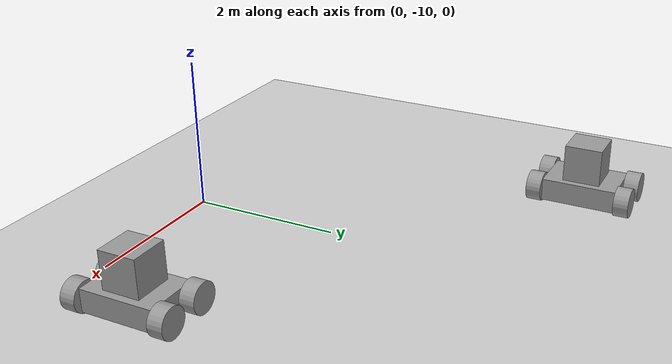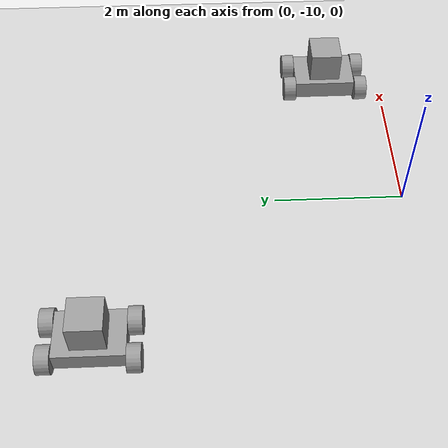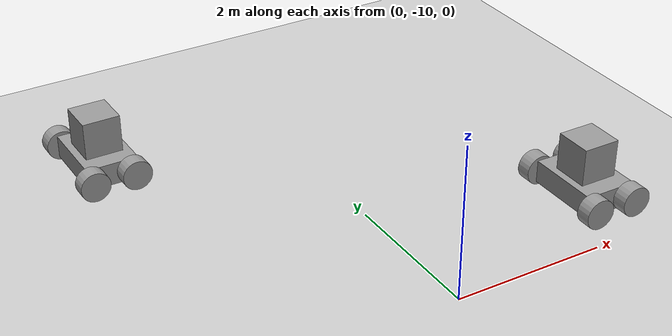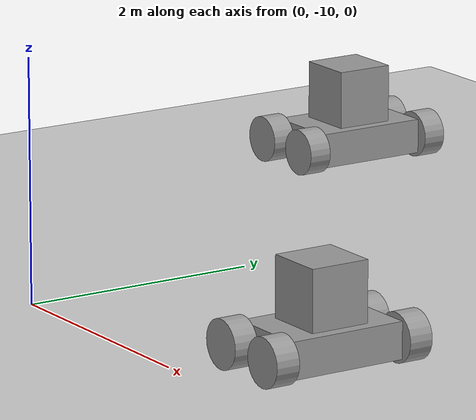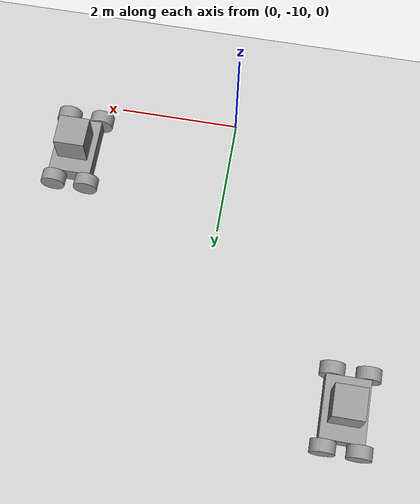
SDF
<sdf version="1.6">
 <world name="default">
  <model name="ground_plane">
   <static>1</static>
   <link name="link">
    <collision name="collision">
     <geometry><plane><normal>0 0 1</normal><size>100 100</size></plane></geometry>
     <surface>
      <contact><collide_bitmask>65535</collide_bitmask></contact>
      <friction><ode><mu>100</mu><mu2>50</mu2></ode></friction>
     </surface>
    </collision>
    <visual name="visual">
     <cast_shadows>0</cast_shadows>
     <geometry><plane><normal>0 0 1</normal><size>100 100</size></plane></geometry>
     <material>
      <script><uri>file://media/materials/scripts/gazebo.material</uri><name>Gazebo/Grey</name></script>
     </material>
    </visual>
   </link>
  </model>
  <model name="vroom">
   <link name="link_0">
    <inertial>
     <mass>1</mass>
     <inertia>
      <ixx>0.166667</ixx>
      <ixy>0</ixy>
      <ixz>0</ixz>
      <iyy>0.166667</iyy>
      <iyz>0</iyz>
      <izz>0.166667</izz>
     </inertia>
    </inertial>
    <pose>0.185083 -0.000105 -0.066667 0 -0 0</pose>
    <visual name="visual">
     <geometry><box><size>0.7 1 0.3</size></box></geometry>
     <material>
      <lighting>1</lighting>
      <script><uri>file://media/materials/scripts/gazebo.material</uri><name>Gazebo/Grey</name></script>
      <shader type="pixel"><normal_map>__default__</normal_map></shader>
      <ambient>0.3 0.3 0.3 1</ambient>
      <diffuse>0.7 0.7 0.7 1</diffuse>
      <specular>0.01 0.01 0.01 1</specular>
      <emissive>0 0 0 1</emissive>
     </material>
    </visual>
    <collision name="collision">
     <geometry><box><size>0.7 1 0.3</size></box></geometry>
     <surface>
      <friction>
       <ode><mu>1</mu><mu2>1</mu2><fdir1>0 0 0</fdir1><slip1>0</slip1><slip2>0</slip2></ode>
       <torsional>
        <coefficient>1</coefficient>
        <patch_radius>0</patch_radius>
        <surface_radius>0</surface_radius>
        <use_patch_radius>1</use_patch_radius>
        <ode><slip>0</slip></ode>
       </torsional>
      </friction>
      <bounce><restitution_coefficient>0</restitution_coefficient><threshold>1e+06</threshold></bounce>
      <contact>
       <collide_without_contact>0</collide_without_contact>
       <collide_without_contact_bitmask>1</collide_without_contact_bitmask>
       <collide_bitmask>1</collide_bitmask>
       <ode>
        <soft_cfm>0</soft_cfm>
        <soft_erp>0.2</soft_erp>
        <kp>1e+13</kp>
        <kd>1</kd>
        <max_vel>0.01</max_vel>
        <min_depth>0</min_depth>
       </ode>
       <bullet>
        <split_impulse>1</split_impulse>
        <split_impulse_penetration_threshold>-0.01</split_impulse_penetration_threshold>
        <soft_cfm>0</soft_cfm>
        <soft_erp>0.2</soft_erp>
        <kp>1e+13</kp>
        <kd>1</kd>
       </bullet>
      </contact>
     </surface>
    </collision>
   </link>
   <link name="link_1">
    <inertial>
     <mass>1</mass>
     <inertia><ixx>0.145833</ixx><ixy>0</ixy><ixz>0</ixz><iyy>0.145833</iyy><iyz>0</iyz><izz>0.125</izz></inertia>
    </inertial>
    <pose>0.444635 0.599914 -0.066667 0 -0 0</pose>
    <visual name="visual">
     <pose>0 0 0 1.5707 -0 0</pose>
     <geometry><cylinder><radius>0.2</radius><length>0.2</length></cylinder></geometry>
     <material>
      <lighting>1</lighting>
      <script><uri>file://media/materials/scripts/gazebo.material</uri><name>Gazebo/Grey</name></script>
      <shader type="pixel"><normal_map>__default__</normal_map></shader>
      <ambient>0.3 0.3 0.3 1</ambient>
      <diffuse>0.7 0.7 0.7 1</diffuse>
      <specular>0.01 0.01 0.01 1</specular>
      <emissive>0 0 0 1</emissive>
     </material>
    </visual>
    <collision name="collision">
     <pose>0 0 0 1.5707 -0 0</pose>
     <geometry><cylinder><radius>0.2</radius><length>0.2</length></cylinder></geometry>
     <surface>
      <friction>
       <ode><mu>1</mu><mu2>1</mu2><fdir1>0 0 0</fdir1><slip1>0</slip1><slip2>0</slip2></ode>
       <torsional>
        <coefficient>1</coefficient>
        <patch_radius>0</patch_radius>
        <surface_radius>0</surface_radius>
        <use_patch_radius>1</use_patch_radius>
        <ode><slip>0</slip></ode>
       </torsional>
      </friction>
      <bounce><restitution_coefficient>0</restitution_coefficient><threshold>1e+06</threshold></bounce>
      <contact>
       <collide_without_contact>0</collide_without_contact>
       <collide_without_contact_bitmask>1</collide_without_contact_bitmask>
       <collide_bitmask>1</collide_bitmask>
       <ode>
        <soft_cfm>0</soft_cfm>
        <soft_erp>0.2</soft_erp>
        <kp>1e+13</kp>
        <kd>1</kd>
        <max_vel>0.01</max_vel>
        <min_depth>0</min_depth>
       </ode>
       <bullet>
        <split_impulse>1</split_impulse>
        <split_impulse_penetration_threshold>-0.01</split_impulse_penetration_threshold>
        <soft_cfm>0</soft_cfm>
        <soft_erp>0.2</soft_erp>
        <kp>1e+13</kp>
        <kd>1</kd>
       </bullet>
      </contact>
     </surface>
    </collision>
   </link>
   <link name="link_1_clone">
    <inertial>
     <mass>1</mass>
     <inertia><ixx>0.145833</ixx><ixy>0</ixy><ixz>0</ixz><iyy>0.145833</iyy><iyz>0</iyz><izz>0.125</izz></inertia>
    </inertial>
    <pose>-0.108437 0.600545 -0.066667 0 -0 0</pose>
    <visual name="visual">
     <pose>0 0 0 1.5707 -0 0</pose>
     <geometry><cylinder><radius>0.2</radius><length>0.2</length></cylinder></geometry>
     <material>
      <lighting>1</lighting>
      <script><uri>file://media/materials/scripts/gazebo.material</uri><name>Gazebo/Grey</name></script>
      <shader type="pixel"><normal_map>__default__</normal_map></shader>
      <ambient>0.3 0.3 0.3 1</ambient>
      <diffuse>0.7 0.7 0.7 1</diffuse>
      <specular>0.01 0.01 0.01 1</specular>
      <emissive>0 0 0 1</emissive>
     </material>
    </visual>
    <collision name="collision">
     <pose>0 0 0 1.5707 -0 0</pose>
     <geometry><cylinder><radius>0.2</radius><length>0.2</length></cylinder></geometry>
     <surface>
      <friction>
       <ode><mu>1</mu><mu2>1</mu2><fdir1>0 0 0</fdir1><slip1>0</slip1><slip2>0</slip2></ode>
       <torsional>
        <coefficient>1</coefficient>
        <patch_radius>0</patch_radius>
        <surface_radius>0</surface_radius>
        <use_patch_radius>1</use_patch_radius>
        <ode><slip>0</slip></ode>
       </torsional>
      </friction>
      <bounce><restitution_coefficient>0</restitution_coefficient><threshold>1e+06</threshold></bounce>
      <contact>
       <collide_without_contact>0</collide_without_contact>
       <collide_without_contact_bitmask>1</collide_without_contact_bitmask>
       <collide_bitmask>1</collide_bitmask>
       <ode>
        <soft_cfm>0</soft_cfm>
        <soft_erp>0.2</soft_erp>
        <kp>1e+13</kp>
        <kd>1</kd>
        <max_vel>0.01</max_vel>
        <min_depth>0</min_depth>
       </ode>
       <bullet>
        <split_impulse>1</split_impulse>
        <split_impulse_penetration_threshold>-0.01</split_impulse_penetration_threshold>
        <soft_cfm>0</soft_cfm>
        <soft_erp>0.2</soft_erp>
        <kp>1e+13</kp>
        <kd>1</kd>
       </bullet>
      </contact>
     </surface>
    </collision>
   </link>
   <link name="link_1_clone_0">
    <inertial>
     <mass>1</mass>
     <inertia><ixx>0.145833</ixx><ixy>0</ixy><ixz>0</ixz><iyy>0.145833</iyy><iyz>0</iyz><izz>0.125</izz></inertia>
    </inertial>
    <pose>-0.127434 -0.600124 -0.066667 0 -0 0</pose>
    <visual name="visual">
     <pose>0 0 0 1.5707 -0 0</pose>
     <geometry><cylinder><radius>0.2</radius><length>0.2</length></cylinder></geometry>
     <material>
      <lighting>1</lighting>
      <script><uri>file://media/materials/scripts/gazebo.material</uri><name>Gazebo/Grey</name></script>
      <shader type="pixel"><normal_map>__default__</normal_map></shader>
      <ambient>0.3 0.3 0.3 1</ambient>
      <diffuse>0.7 0.7 0.7 1</diffuse>
      <specular>0.01 0.01 0.01 1</specular>
      <emissive>0 0 0 1</emissive>
     </material>
    </visual>
    <collision name="collision">
     <pose>0 0 0 1.5707 -0 0</pose>
     <geometry><cylinder><radius>0.2</radius><length>0.2</length></cylinder></geometry>
     <surface>
      <friction>
       <ode><mu>1</mu><mu2>1</mu2><fdir1>0 0 0</fdir1><slip1>0</slip1><slip2>0</slip2></ode>
       <torsional>
        <coefficient>1</coefficient>
        <patch_radius>0</patch_radius>
        <surface_radius>0</surface_radius>
        <use_patch_radius>1</use_patch_radius>
        <ode><slip>0</slip></ode>
       </torsional>
      </friction>
      <bounce><restitution_coefficient>0</restitution_coefficient><threshold>1e+06</threshold></bounce>
      <contact>
       <collide_without_contact>0</collide_without_contact>
       <collide_without_contact_bitmask>1</collide_without_contact_bitmask>
       <collide_bitmask>1</collide_bitmask>
       <ode>
        <soft_cfm>0</soft_cfm>
        <soft_erp>0.2</soft_erp>
        <kp>1e+13</kp>
        <kd>1</kd>
        <max_vel>0.01</max_vel>
        <min_depth>0</min_depth>
       </ode>
       <bullet>
        <split_impulse>1</split_impulse>
        <split_impulse_penetration_threshold>-0.01</split_impulse_penetration_threshold>
        <soft_cfm>0</soft_cfm>
        <soft_erp>0.2</soft_erp>
        <kp>1e+13</kp>
        <kd>1</kd>
       </bullet>
      </contact>
     </surface>
    </collision>
   </link>
   <link name="link_1_clone_1">
    <inertial>
     <mass>1</mass>
     <inertia><ixx>0.145833</ixx><ixy>0</ixy><ixz>0</ixz><iyy>0.145833</iyy><iyz>0</iyz><izz>0.125</izz></inertia>
    </inertial>
    <pose>0.436609 -0.600124 -0.066667 0 -0 0</pose>
    <visual name="visual">
     <pose>0 0 0 1.5707 -0 0</pose>
     <geometry><cylinder><radius>0.2</radius><length>0.2</length></cylinder></geometry>
     <material>
      <lighting>1</lighting>
      <script><uri>file://media/materials/scripts/gazebo.material</uri><name>Gazebo/Grey</name></script>
      <shader type="pixel"><normal_map>__default__</normal_map></shader>
      <ambient>0.3 0.3 0.3 1</ambient>
      <diffuse>0.7 0.7 0.7 1</diffuse>
      <specular>0.01 0.01 0.01 1</specular>
      <emissive>0 0 0 1</emissive>
     </material>
    </visual>
    <collision name="collision">
     <pose>0 0 0 1.5707 -0 0</pose>
     <geometry><cylinder><radius>0.2</radius><length>0.2</length></cylinder></geometry>
     <surface>
      <friction>
       <ode><mu>1</mu><mu2>1</mu2><fdir1>0 0 0</fdir1><slip1>0</slip1><slip2>0</slip2></ode>
       <torsional>
        <coefficient>1</coefficient>
        <patch_radius>0</patch_radius>
        <surface_radius>0</surface_radius>
        <use_patch_radius>1</use_patch_radius>
        <ode><slip>0</slip></ode>
       </torsional>
      </friction>
      <bounce><restitution_coefficient>0</restitution_coefficient><threshold>1e+06</threshold></bounce>
      <contact>
       <collide_without_contact>0</collide_without_contact>
       <collide_without_contact_bitmask>1</collide_without_contact_bitmask>
       <collide_bitmask>1</collide_bitmask>
       <ode>
        <soft_cfm>0</soft_cfm>
        <soft_erp>0.2</soft_erp>
        <kp>1e+13</kp>
        <kd>1</kd>
        <max_vel>0.01</max_vel>
        <min_depth>0</min_depth>
       </ode>
       <bullet>
        <split_impulse>1</split_impulse>
        <split_impulse_penetration_threshold>-0.01</split_impulse_penetration_threshold>
        <soft_cfm>0</soft_cfm>
        <soft_erp>0.2</soft_erp>
        <kp>1e+13</kp>
        <kd>1</kd>
       </bullet>
      </contact>
     </surface>
    </collision>
   </link>
   <link name="link_2">
    <inertial>
     <mass>1</mass>
     <inertia>
      <ixx>0.166667</ixx>
      <ixy>0</ixy>
      <ixz>0</ixz>
      <iyy>0.166667</iyy>
      <iyz>0</iyz>
      <izz>0.166667</izz>
     </inertia>
    </inertial>
    <pose>0.185083 -0.000105 0.333333 0 -0 0</pose>
    <visual name="visual">
     <geometry><box><size>0.5 0.5 0.5</size></box></geometry>
     <material>
      <lighting>1</lighting>
      <script><uri>file://media/materials/scripts/gazebo.material</uri><name>Gazebo/Grey</name></script>
      <shader type="pixel"><normal_map>__default__</normal_map></shader>
      <ambient>0.3 0.3 0.3 1</ambient>
      <diffuse>0.7 0.7 0.7 1</diffuse>
      <specular>0.01 0.01 0.01 1</specular>
      <emissive>0 0 0 1</emissive>
     </material>
    </visual>
    <collision name="collision">
     <geometry><box><size>0.5 0.5 0.5</size></box></geometry>
     <surface>
      <friction>
       <ode><mu>1</mu><mu2>1</mu2><fdir1>0 0 0</fdir1><slip1>0</slip1><slip2>0</slip2></ode>
       <torsional>
        <coefficient>1</coefficient>
        <patch_radius>0</patch_radius>
        <surface_radius>0</surface_radius>
        <use_patch_radius>1</use_patch_radius>
        <ode><slip>0</slip></ode>
       </torsional>
      </friction>
      <bounce><restitution_coefficient>0</restitution_coefficient><threshold>1e+06</threshold></bounce>
      <contact>
       <collide_without_contact>0</collide_without_contact>
       <collide_without_contact_bitmask>1</collide_without_contact_bitmask>
       <collide_bitmask>1</collide_bitmask>
       <ode>
        <soft_cfm>0</soft_cfm>
        <soft_erp>0.2</soft_erp>
        <kp>1e+13</kp>
        <kd>1</kd>
        <max_vel>0.01</max_vel>
        <min_depth>0</min_depth>
       </ode>
       <bullet>
        <split_impulse>1</split_impulse>
        <split_impulse_penetration_threshold>-0.01</split_impulse_penetration_threshold>
        <soft_cfm>0</soft_cfm>
        <soft_erp>0.2</soft_erp>
        <kp>1e+13</kp>
        <kd>1</kd>
       </bullet>
      </contact>
     </surface>
    </collision>
   </link>
   <joint name="link_0_JOINT_0" type="revolute">
    <parent>link_0</parent>
    <child>link_1</child>
    <axis>
     <xyz>0 0 1</xyz>
     <use_parent_model_frame>0</use_parent_model_frame>
     <limit>
      <lower>-1.79769e+308</lower>
      <upper>1.79769e+308</upper>
      <effort>-1</effort>
      <velocity>-1</velocity>
     </limit>
     <dynamics>
      <spring_reference>0</spring_reference>
      <spring_stiffness>0</spring_stiffness>
      <damping>0</damping>
     </dynamics>
    </axis>
    <physics>
     <ode><limit><cfm>0</cfm><erp>0.2</erp></limit><suspension><cfm>0</cfm><erp>0.2</erp></suspension></ode>
    </physics>
   </joint>
   <joint name="link_0_JOINT_1" type="revolute">
    <parent>link_0</parent>
    <child>link_1_clone</child>
    <axis>
     <xyz>0 0 1</xyz>
     <use_parent_model_frame>0</use_parent_model_frame>
     <limit>
      <lower>-1.79769e+308</lower>
      <upper>1.79769e+308</upper>
      <effort>-1</effort>
      <velocity>-1</velocity>
     </limit>
     <dynamics>
      <spring_reference>0</spring_reference>
      <spring_stiffness>0</spring_stiffness>
      <damping>0</damping>
     </dynamics>
    </axis>
    <physics>
     <ode><limit><cfm>0</cfm><erp>0.2</erp></limit><suspension><cfm>0</cfm><erp>0.2</erp></suspension></ode>
    </physics>
   </joint>
   <joint name="link_0_JOINT_2" type="revolute">
    <parent>link_0</parent>
    <child>link_1_clone_0</child>
    <axis>
     <xyz>1 0 0</xyz>
     <use_parent_model_frame>0</use_parent_model_frame>
     <limit>
      <lower>-1.79769e+308</lower>
      <upper>1.79769e+308</upper>
      <effort>-1</effort>
      <velocity>-1</velocity>
     </limit>
     <dynamics>
      <spring_reference>0</spring_reference>
      <spring_stiffness>0</spring_stiffness>
      <damping>0</damping>
     </dynamics>
    </axis>
    <physics>
     <ode><limit><cfm>0</cfm><erp>0.2</erp></limit><suspension><cfm>0</cfm><erp>0.2</erp></suspension></ode>
    </physics>
   </joint>
   <joint name="link_0_JOINT_4" type="revolute">
    <parent>link_0</parent>
    <child>link_1_clone_1</child>
    <axis>
     <xyz>1 0 0</xyz>
     <use_parent_model_frame>0</use_parent_model_frame>
     <limit>
      <lower>-1.79769e+308</lower>
      <upper>1.79769e+308</upper>
      <effort>-1</effort>
      <velocity>-1</velocity>
     </limit>
     <dynamics>
      <spring_reference>0</spring_reference>
      <spring_stiffness>0</spring_stiffness>
      <damping>0</damping>
     </dynamics>
    </axis>
    <physics>
     <ode><limit><cfm>0</cfm><erp>0.2</erp></limit><suspension><cfm>0</cfm><erp>0.2</erp></suspension></ode>
    </physics>
   </joint>
   <joint name="link_0_JOINT_5" type="revolute">
    <parent>link_0</parent>
    <child>link_2</child>
    <axis>
     <xyz>1 0 0</xyz>
     <use_parent_model_frame>0</use_parent_model_frame>
     <limit>
      <lower>-1.79769e+308</lower>
      <upper>1.79769e+308</upper>
      <effort>-1</effort>
      <velocity>-1</velocity>
     </limit>
     <dynamics>
      <spring_reference>0</spring_reference>
      <spring_stiffness>0</spring_stiffness>
      <damping>0</damping>
     </dynamics>
    </axis>
    <physics>
     <ode><limit><cfm>0</cfm><erp>0.2</erp></limit><suspension><cfm>0</cfm><erp>0.2</erp></suspension></ode>
    </physics>
   </joint>
   <static>0</static>
   <pose>-2.58792 -5.33425 0.266671 7e-06 0 0.001865</pose>
  </model>
  <model name="vroom_0">
   <link name="link_0">
    <inertial>
     <mass>1</mass>
     <inertia>
      <ixx>0.166667</ixx>
      <ixy>0</ixy>
      <ixz>0</ixz>
      <iyy>0.166667</iyy>
      <iyz>0</iyz>
      <izz>0.166667</izz>
     </inertia>
    </inertial>
    <pose>0.185083 -0.000105 -0.066667 0 -0 0</pose>
    <visual name="visual">
     <geometry><box><size>0.7 1 0.3</size></box></geometry>
     <material>
      <lighting>1</lighting>
      <script><uri>file://media/materials/scripts/gazebo.material</uri><name>Gazebo/Grey</name></script>
      <shader type="pixel"><normal_map>__default__</normal_map></shader>
      <ambient>0.3 0.3 0.3 1</ambient>
      <diffuse>0.7 0.7 0.7 1</diffuse>
      <specular>0.01 0.01 0.01 1</specular>
      <emissive>0 0 0 1</emissive>
     </material>
    </visual>
    <collision name="collision">
     <geometry><box><size>0.7 1 0.3</size></box></geometry>
     <surface>
      <friction>
       <ode><mu>1</mu><mu2>1</mu2><fdir1>0 0 0</fdir1><slip1>0</slip1><slip2>0</slip2></ode>
       <torsional>
        <coefficient>1</coefficient>
        <patch_radius>0</patch_radius>
        <surface_radius>0</surface_radius>
        <use_patch_radius>1</use_patch_radius>
        <ode><slip>0</slip></ode>
       </torsional>
      </friction>
      <bounce><restitution_coefficient>0</restitution_coefficient><threshold>1e+06</threshold></bounce>
      <contact>
       <collide_without_contact>0</collide_without_contact>
       <collide_without_contact_bitmask>1</collide_without_contact_bitmask>
       <collide_bitmask>1</collide_bitmask>
       <ode>
        <soft_cfm>0</soft_cfm>
        <soft_erp>0.2</soft_erp>
        <kp>1e+13</kp>
        <kd>1</kd>
        <max_vel>0.01</max_vel>
        <min_depth>0</min_depth>
       </ode>
       <bullet>
        <split_impulse>1</split_impulse>
        <split_impulse_penetration_threshold>-0.01</split_impulse_penetration_threshold>
        <soft_cfm>0</soft_cfm>
        <soft_erp>0.2</soft_erp>
        <kp>1e+13</kp>
        <kd>1</kd>
       </bullet>
      </contact>
     </surface>
    </collision>
   </link>
   <link name="link_1">
    <inertial>
     <mass>1</mass>
     <inertia><ixx>0.145833</ixx><ixy>0</ixy><ixz>0</ixz><iyy>0.145833</iyy><iyz>0</iyz><izz>0.125</izz></inertia>
    </inertial>
    <pose>0.444635 0.599914 -0.066667 0 -0 0</pose>
    <visual name="visual">
     <pose>0 0 0 1.5707 -0 0</pose>
     <geometry><cylinder><radius>0.2</radius><length>0.2</length></cylinder></geometry>
     <material>
      <lighting>1</lighting>
      <script><uri>file://media/materials/scripts/gazebo.material</uri><name>Gazebo/Grey</name></script>
      <shader type="pixel"><normal_map>__default__</normal_map></shader>
      <ambient>0.3 0.3 0.3 1</ambient>
      <diffuse>0.7 0.7 0.7 1</diffuse>
      <specular>0.01 0.01 0.01 1</specular>
      <emissive>0 0 0 1</emissive>
     </material>
    </visual>
    <collision name="collision">
     <pose>0 0 0 1.5707 -0 0</pose>
     <geometry><cylinder><radius>0.2</radius><length>0.2</length></cylinder></geometry>
     <surface>
      <friction>
       <ode><mu>1</mu><mu2>1</mu2><fdir1>0 0 0</fdir1><slip1>0</slip1><slip2>0</slip2></ode>
       <torsional>
        <coefficient>1</coefficient>
        <patch_radius>0</patch_radius>
        <surface_radius>0</surface_radius>
        <use_patch_radius>1</use_patch_radius>
        <ode><slip>0</slip></ode>
       </torsional>
      </friction>
      <bounce><restitution_coefficient>0</restitution_coefficient><threshold>1e+06</threshold></bounce>
      <contact>
       <collide_without_contact>0</collide_without_contact>
       <collide_without_contact_bitmask>1</collide_without_contact_bitmask>
       <collide_bitmask>1</collide_bitmask>
       <ode>
        <soft_cfm>0</soft_cfm>
        <soft_erp>0.2</soft_erp>
        <kp>1e+13</kp>
        <kd>1</kd>
        <max_vel>0.01</max_vel>
        <min_depth>0</min_depth>
       </ode>
       <bullet>
        <split_impulse>1</split_impulse>
        <split_impulse_penetration_threshold>-0.01</split_impulse_penetration_threshold>
        <soft_cfm>0</soft_cfm>
        <soft_erp>0.2</soft_erp>
        <kp>1e+13</kp>
        <kd>1</kd>
       </bullet>
      </contact>
     </surface>
    </collision>
   </link>
   <link name="link_1_clone">
    <inertial>
     <mass>1</mass>
     <inertia><ixx>0.145833</ixx><ixy>0</ixy><ixz>0</ixz><iyy>0.145833</iyy><iyz>0</iyz><izz>0.125</izz></inertia>
    </inertial>
    <pose>-0.108437 0.600545 -0.066667 0 -0 0</pose>
    <visual name="visual">
     <pose>0 0 0 1.5707 -0 0</pose>
     <geometry><cylinder><radius>0.2</radius><length>0.2</length></cylinder></geometry>
     <material>
      <lighting>1</lighting>
      <script><uri>file://media/materials/scripts/gazebo.material</uri><name>Gazebo/Grey</name></script>
      <shader type="pixel"><normal_map>__default__</normal_map></shader>
      <ambient>0.3 0.3 0.3 1</ambient>
      <diffuse>0.7 0.7 0.7 1</diffuse>
      <specular>0.01 0.01 0.01 1</specular>
      <emissive>0 0 0 1</emissive>
     </material>
    </visual>
    <collision name="collision">
     <pose>0 0 0 1.5707 -0 0</pose>
     <geometry><cylinder><radius>0.2</radius><length>0.2</length></cylinder></geometry>
     <surface>
      <friction>
       <ode><mu>1</mu><mu2>1</mu2><fdir1>0 0 0</fdir1><slip1>0</slip1><slip2>0</slip2></ode>
       <torsional>
        <coefficient>1</coefficient>
        <patch_radius>0</patch_radius>
        <surface_radius>0</surface_radius>
        <use_patch_radius>1</use_patch_radius>
        <ode><slip>0</slip></ode>
       </torsional>
      </friction>
      <bounce><restitution_coefficient>0</restitution_coefficient><threshold>1e+06</threshold></bounce>
      <contact>
       <collide_without_contact>0</collide_without_contact>
       <collide_without_contact_bitmask>1</collide_without_contact_bitmask>
       <collide_bitmask>1</collide_bitmask>
       <ode>
        <soft_cfm>0</soft_cfm>
        <soft_erp>0.2</soft_erp>
        <kp>1e+13</kp>
        <kd>1</kd>
        <max_vel>0.01</max_vel>
        <min_depth>0</min_depth>
       </ode>
       <bullet>
        <split_impulse>1</split_impulse>
        <split_impulse_penetration_threshold>-0.01</split_impulse_penetration_threshold>
        <soft_cfm>0</soft_cfm>
        <soft_erp>0.2</soft_erp>
        <kp>1e+13</kp>
        <kd>1</kd>
       </bullet>
      </contact>
     </surface>
    </collision>
   </link>
   <link name="link_1_clone_0">
    <inertial>
     <mass>1</mass>
     <inertia><ixx>0.145833</ixx><ixy>0</ixy><ixz>0</ixz><iyy>0.145833</iyy><iyz>0</iyz><izz>0.125</izz></inertia>
    </inertial>
    <pose>-0.127434 -0.600124 -0.066667 0 -0 0</pose>
    <visual name="visual">
     <pose>0 0 0 1.5707 -0 0</pose>
     <geometry><cylinder><radius>0.2</radius><length>0.2</length></cylinder></geometry>
     <material>
      <lighting>1</lighting>
      <script><uri>file://media/materials/scripts/gazebo.material</uri><name>Gazebo/Grey</name></script>
      <shader type="pixel"><normal_map>__default__</normal_map></shader>
      <ambient>0.3 0.3 0.3 1</ambient>
      <diffuse>0.7 0.7 0.7 1</diffuse>
      <specular>0.01 0.01 0.01 1</specular>
      <emissive>0 0 0 1</emissive>
     </material>
    </visual>
    <collision name="collision">
     <pose>0 0 0 1.5707 -0 0</pose>
     <geometry><cylinder><radius>0.2</radius><length>0.2</length></cylinder></geometry>
     <surface>
      <friction>
       <ode><mu>1</mu><mu2>1</mu2><fdir1>0 0 0</fdir1><slip1>0</slip1><slip2>0</slip2></ode>
       <torsional>
        <coefficient>1</coefficient>
        <patch_radius>0</patch_radius>
        <surface_radius>0</surface_radius>
        <use_patch_radius>1</use_patch_radius>
        <ode><slip>0</slip></ode>
       </torsional>
      </friction>
      <bounce><restitution_coefficient>0</restitution_coefficient><threshold>1e+06</threshold></bounce>
      <contact>
       <collide_without_contact>0</collide_without_contact>
       <collide_without_contact_bitmask>1</collide_without_contact_bitmask>
       <collide_bitmask>1</collide_bitmask>
       <ode>
        <soft_cfm>0</soft_cfm>
        <soft_erp>0.2</soft_erp>
        <kp>1e+13</kp>
        <kd>1</kd>
        <max_vel>0.01</max_vel>
        <min_depth>0</min_depth>
       </ode>
       <bullet>
        <split_impulse>1</split_impulse>
        <split_impulse_penetration_threshold>-0.01</split_impulse_penetration_threshold>
        <soft_cfm>0</soft_cfm>
        <soft_erp>0.2</soft_erp>
        <kp>1e+13</kp>
        <kd>1</kd>
       </bullet>
      </contact>
     </surface>
    </collision>
   </link>
   <link name="link_1_clone_1">
    <inertial>
     <mass>1</mass>
     <inertia><ixx>0.145833</ixx><ixy>0</ixy><ixz>0</ixz><iyy>0.145833</iyy><iyz>0</iyz><izz>0.125</izz></inertia>
    </inertial>
    <pose>0.436609 -0.600124 -0.066667 0 -0 0</pose>
    <visual name="visual">
     <pose>0 0 0 1.5707 -0 0</pose>
     <geometry><cylinder><radius>0.2</radius><length>0.2</length></cylinder></geometry>
     <material>
      <lighting>1</lighting>
      <script><uri>file://media/materials/scripts/gazebo.material</uri><name>Gazebo/Grey</name></script>
      <shader type="pixel"><normal_map>__default__</normal_map></shader>
      <ambient>0.3 0.3 0.3 1</ambient>
      <diffuse>0.7 0.7 0.7 1</diffuse>
      <specular>0.01 0.01 0.01 1</specular>
      <emissive>0 0 0 1</emissive>
     </material>
    </visual>
    <collision name="collision">
     <pose>0 0 0 1.5707 -0 0</pose>
     <geometry><cylinder><radius>0.2</radius><length>0.2</length></cylinder></geometry>
     <surface>
      <friction>
       <ode><mu>1</mu><mu2>1</mu2><fdir1>0 0 0</fdir1><slip1>0</slip1><slip2>0</slip2></ode>
       <torsional>
        <coefficient>1</coefficient>
        <patch_radius>0</patch_radius>
        <surface_radius>0</surface_radius>
        <use_patch_radius>1</use_patch_radius>
        <ode><slip>0</slip></ode>
       </torsional>
      </friction>
      <bounce><restitution_coefficient>0</restitution_coefficient><threshold>1e+06</threshold></bounce>
      <contact>
       <collide_without_contact>0</collide_without_contact>
       <collide_without_contact_bitmask>1</collide_without_contact_bitmask>
       <collide_bitmask>1</collide_bitmask>
       <ode>
        <soft_cfm>0</soft_cfm>
        <soft_erp>0.2</soft_erp>
        <kp>1e+13</kp>
        <kd>1</kd>
        <max_vel>0.01</max_vel>
        <min_depth>0</min_depth>
       </ode>
       <bullet>
        <split_impulse>1</split_impulse>
        <split_impulse_penetration_threshold>-0.01</split_impulse_penetration_threshold>
        <soft_cfm>0</soft_cfm>
        <soft_erp>0.2</soft_erp>
        <kp>1e+13</kp>
        <kd>1</kd>
       </bullet>
      </contact>
     </surface>
    </collision>
   </link>
   <link name="link_2">
    <inertial>
     <mass>1</mass>
     <inertia>
      <ixx>0.166667</ixx>
      <ixy>0</ixy>
      <ixz>0</ixz>
      <iyy>0.166667</iyy>
      <iyz>0</iyz>
      <izz>0.166667</izz>
     </inertia>
    </inertial>
    <pose>0.185083 -0.000105 0.333333 0 -0 0</pose>
    <visual name="visual">
     <geometry><box><size>0.5 0.5 0.5</size></box></geometry>
     <material>
      <lighting>1</lighting>
      <script><uri>file://media/materials/scripts/gazebo.material</uri><name>Gazebo/Grey</name></script>
      <shader type="pixel"><normal_map>__default__</normal_map></shader>
      <ambient>0.3 0.3 0.3 1</ambient>
      <diffuse>0.7 0.7 0.7 1</diffuse>
      <specular>0.01 0.01 0.01 1</specular>
      <emissive>0 0 0 1</emissive>
     </material>
    </visual>
    <collision name="collision">
     <geometry><box><size>0.5 0.5 0.5</size></box></geometry>
     <surface>
      <friction>
       <ode><mu>1</mu><mu2>1</mu2><fdir1>0 0 0</fdir1><slip1>0</slip1><slip2>0</slip2></ode>
       <torsional>
        <coefficient>1</coefficient>
        <patch_radius>0</patch_radius>
        <surface_radius>0</surface_radius>
        <use_patch_radius>1</use_patch_radius>
        <ode><slip>0</slip></ode>
       </torsional>
      </friction>
      <bounce><restitution_coefficient>0</restitution_coefficient><threshold>1e+06</threshold></bounce>
      <contact>
       <collide_without_contact>0</collide_without_contact>
       <collide_without_contact_bitmask>1</collide_without_contact_bitmask>
       <collide_bitmask>1</collide_bitmask>
       <ode>
        <soft_cfm>0</soft_cfm>
        <soft_erp>0.2</soft_erp>
        <kp>1e+13</kp>
        <kd>1</kd>
        <max_vel>0.01</max_vel>
        <min_depth>0</min_depth>
       </ode>
       <bullet>
        <split_impulse>1</split_impulse>
        <split_impulse_penetration_threshold>-0.01</split_impulse_penetration_threshold>
        <soft_cfm>0</soft_cfm>
        <soft_erp>0.2</soft_erp>
        <kp>1e+13</kp>
        <kd>1</kd>
       </bullet>
      </contact>
     </surface>
    </collision>
   </link>
   <joint name="link_0_JOINT_0" type="revolute">
    <parent>link_0</parent>
    <child>link_1</child>
    <axis>
     <xyz>0 0 1</xyz>
     <use_parent_model_frame>0</use_parent_model_frame>
     <limit>
      <lower>-1.79769e+308</lower>
      <upper>1.79769e+308</upper>
      <effort>-1</effort>
      <velocity>-1</velocity>
     </limit>
     <dynamics>
      <spring_reference>0</spring_reference>
      <spring_stiffness>0</spring_stiffness>
      <damping>0</damping>
     </dynamics>
    </axis>
    <physics>
     <ode><limit><cfm>0</cfm><erp>0.2</erp></limit><suspension><cfm>0</cfm><erp>0.2</erp></suspension></ode>
    </physics>
   </joint>
   <joint name="link_0_JOINT_1" type="revolute">
    <parent>link_0</parent>
    <child>link_1_clone</child>
    <axis>
     <xyz>0 0 1</xyz>
     <use_parent_model_frame>0</use_parent_model_frame>
     <limit>
      <lower>-1.79769e+308</lower>
      <upper>1.79769e+308</upper>
      <effort>-1</effort>
      <velocity>-1</velocity>
     </limit>
     <dynamics>
      <spring_reference>0</spring_reference>
      <spring_stiffness>0</spring_stiffness>
      <damping>0</damping>
     </dynamics>
    </axis>
    <physics>
     <ode><limit><cfm>0</cfm><erp>0.2</erp></limit><suspension><cfm>0</cfm><erp>0.2</erp></suspension></ode>
    </physics>
   </joint>
   <joint name="link_0_JOINT_2" type="revolute">
    <parent>link_0</parent>
    <child>link_1_clone_0</child>
    <axis>
     <xyz>1 0 0</xyz>
     <use_parent_model_frame>0</use_parent_model_frame>
     <limit>
      <lower>-1.79769e+308</lower>
      <upper>1.79769e+308</upper>
      <effort>-1</effort>
      <velocity>-1</velocity>
     </limit>
     <dynamics>
      <spring_reference>0</spring_reference>
      <spring_stiffness>0</spring_stiffness>
      <damping>0</damping>
     </dynamics>
    </axis>
    <physics>
     <ode><limit><cfm>0</cfm><erp>0.2</erp></limit><suspension><cfm>0</cfm><erp>0.2</erp></suspension></ode>
    </physics>
   </joint>
   <joint name="link_0_JOINT_4" type="revolute">
    <parent>link_0</parent>
    <child>link_1_clone_1</child>
    <axis>
     <xyz>1 0 0</xyz>
     <use_parent_model_frame>0</use_parent_model_frame>
     <limit>
      <lower>-1.79769e+308</lower>
      <upper>1.79769e+308</upper>
      <effort>-1</effort>
      <velocity>-1</velocity>
     </limit>
     <dynamics>
      <spring_reference>0</spring_reference>
      <spring_stiffness>0</spring_stiffness>
      <damping>0</damping>
     </dynamics>
    </axis>
    <physics>
     <ode><limit><cfm>0</cfm><erp>0.2</erp></limit><suspension><cfm>0</cfm><erp>0.2</erp></suspension></ode>
    </physics>
   </joint>
   <joint name="link_0_JOINT_5" type="revolute">
    <parent>link_0</parent>
    <child>link_2</child>
    <axis>
     <xyz>1 0 0</xyz>
     <use_parent_model_frame>0</use_parent_model_frame>
     <limit>
      <lower>-1.79769e+308</lower>
      <upper>1.79769e+308</upper>
      <effort>-1</effort>
      <velocity>-1</velocity>
     </limit>
     <dynamics>
      <spring_reference>0</spring_reference>
      <spring_stiffness>0</spring_stiffness>
      <damping>0</damping>
     </dynamics>
    </axis>
    <physics>
     <ode><limit><cfm>0</cfm><erp>0.2</erp></limit><suspension><cfm>0</cfm><erp>0.2</erp></suspension></ode>
    </physics>
   </joint>
   <static>0</static>
   <pose>2.4017 -9.00684 0.266671 8e-06 -0 0.001392</pose>
  </model>
 </world>
</sdf>
